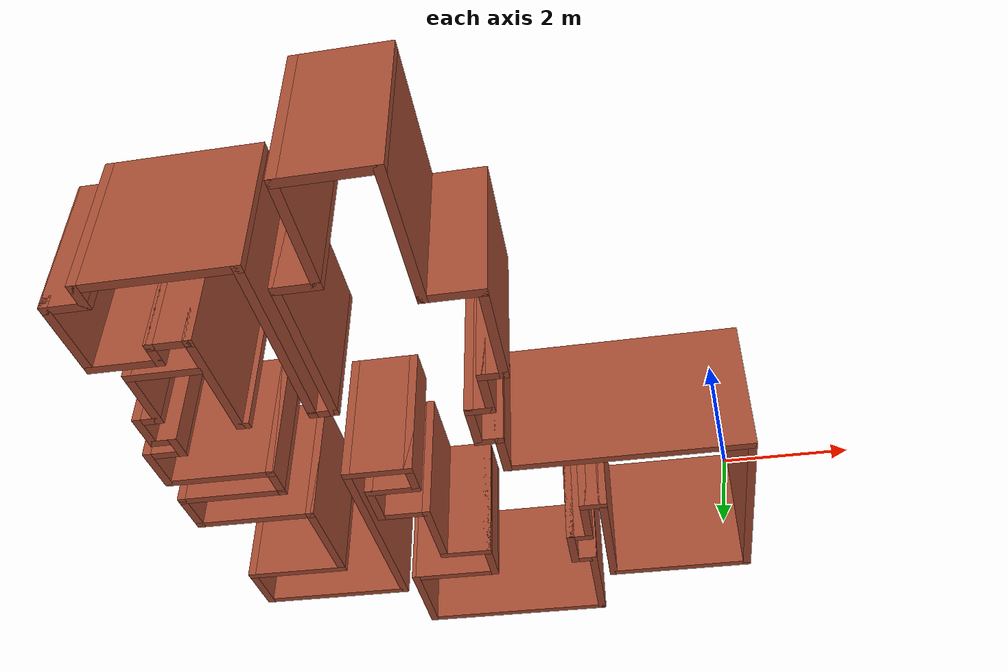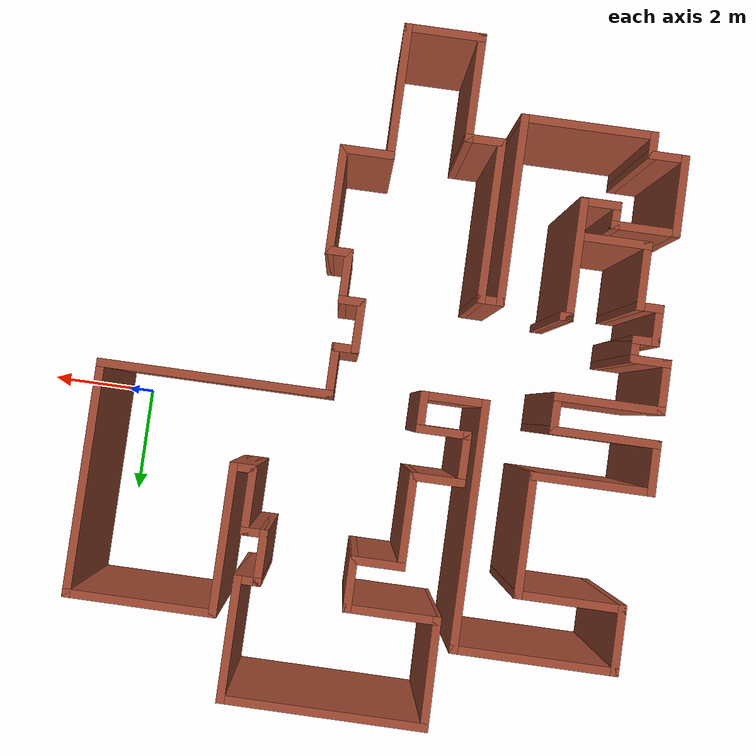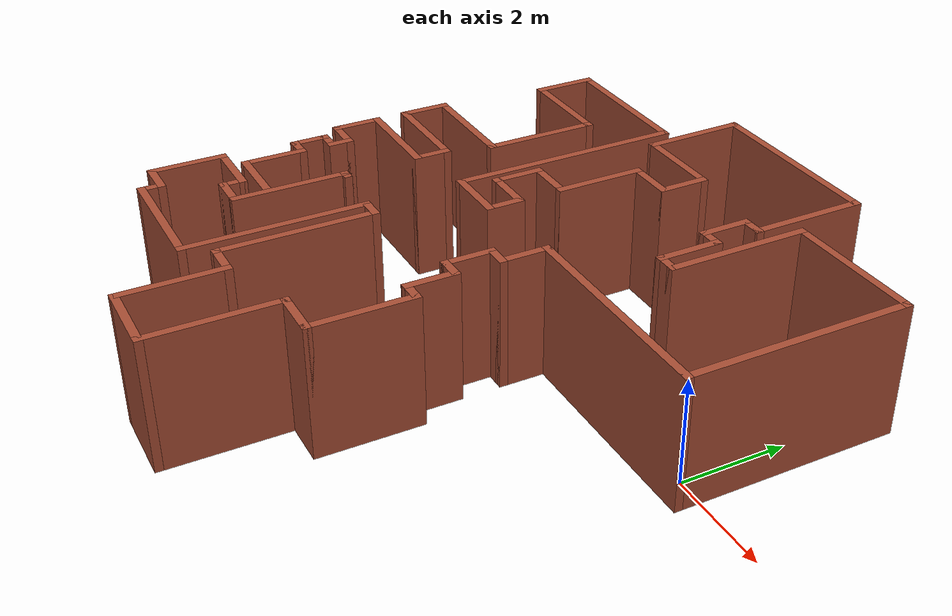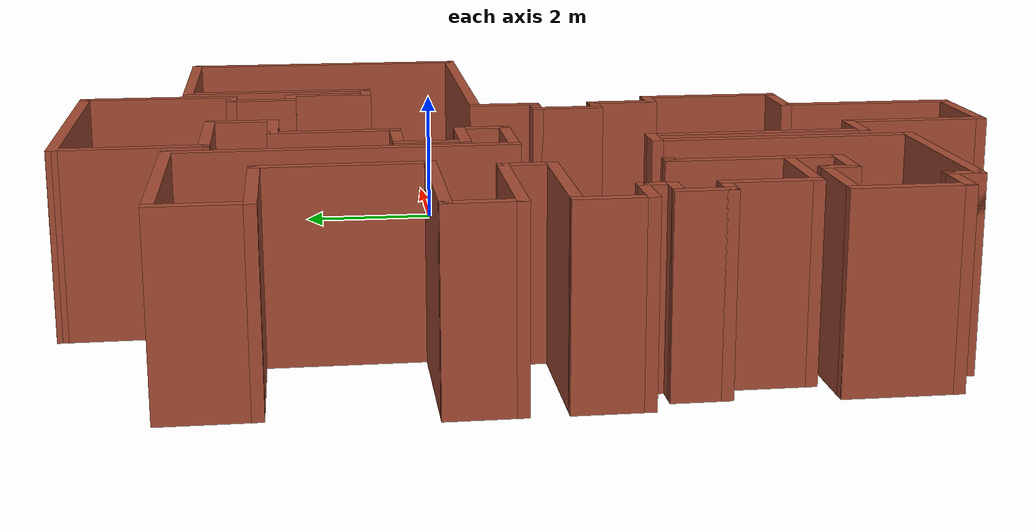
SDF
<?xml version='1.0'?>
<sdf version='1.6'>
  <model name='map_62'>
    <pose frame=''>-4.52641 -0.990707 0 0 -0 0</pose>
    <link name='Wall_0'>
      <collision name='Wall_0_Collision'>
        <geometry>
          <box>
            <size>3.75 0.15 2.5</size>
          </box>
        </geometry>
        <pose frame=''>0 0 1.25 0 -0 0</pose>
      </collision>
      <visual name='Wall_0_Visual'>
        <pose frame=''>0 0 1.25 0 -0 0</pose>
        <geometry>
          <box>
            <size>3.75 0.15 2.5</size>
          </box>
        </geometry>
        <material>
          <script>
            <uri>file://media/materials/scripts/gazebo.material</uri>
            <name>Gazebo/Bricks</name>
          </script>
          <ambient>1 1 1 1</ambient>
        </material>
        <meta>
          <layer>0</layer>
        </meta>
      </visual>
      <pose frame=''>0.239507 6.14958 0 0 -0 0</pose>
    </link>
    <link name='Wall_1'>
      <collision name='Wall_1_Collision'>
        <geometry>
          <box>
            <size>2.25 0.15 2.5</size>
          </box>
        </geometry>
        <pose frame=''>0 0 1.25 0 -0 0</pose>
      </collision>
      <visual name='Wall_1_Visual'>
        <pose frame=''>0 0 1.25 0 -0 0</pose>
        <geometry>
          <box>
            <size>2.25 0.15 2.5</size>
          </box>
        </geometry>
        <material>
          <script>
            <uri>file://media/materials/scripts/gazebo.material</uri>
            <name>Gazebo/Bricks</name>
          </script>
          <ambient>1 1 1 1</ambient>
        </material>
        <meta>
          <layer>0</layer>
        </meta>
      </visual>
      <pose frame=''>2.03951 5.09958 0 0 -0 -1.5708</pose>
    </link>
    <link name='Wall_10'>
      <collision name='Wall_10_Collision'>
        <geometry>
          <box>
            <size>4.25 0.15 2.5</size>
          </box>
        </geometry>
        <pose frame=''>0 0 1.25 0 -0 0</pose>
      </collision>
      <visual name='Wall_10_Visual'>
        <pose frame=''>0 0 1.25 0 -0 0</pose>
        <geometry>
          <box>
            <size>4.25 0.15 2.5</size>
          </box>
        </geometry>
        <material>
          <script>
            <uri>file://media/materials/scripts/gazebo.material</uri>
            <name>Gazebo/Bricks</name>
          </script>
          <ambient>1 1 1 1</ambient>
        </material>
        <meta>
          <layer>0</layer>
        </meta>
      </visual>
      <pose frame=''>2.93951 0.59958 0 0 -0 3.14159</pose>
    </link>
    <link name='Wall_11'>
      <collision name='Wall_11_Collision'>
        <geometry>
          <box>
            <size>1 0.15 2.5</size>
          </box>
        </geometry>
        <pose frame=''>0 0 1.25 0 -0 0</pose>
      </collision>
      <visual name='Wall_11_Visual'>
        <pose frame=''>0 0 1.25 0 -0 0</pose>
        <geometry>
          <box>
            <size>1 0.15 2.5</size>
          </box>
        </geometry>
        <material>
          <script>
            <uri>file://media/materials/scripts/gazebo.material</uri>
            <name>Gazebo/Bricks</name>
          </script>
          <ambient>1 1 1 1</ambient>
        </material>
        <meta>
          <layer>0</layer>
        </meta>
      </visual>
      <pose frame=''>0.889506 0.17458 0 0 -0 -1.5708</pose>
    </link>
    <link name='Wall_12'>
      <collision name='Wall_12_Collision'>
        <geometry>
          <box>
            <size>0.5 0.15 2.5</size>
          </box>
        </geometry>
        <pose frame=''>0 0 1.25 0 -0 0</pose>
      </collision>
      <visual name='Wall_12_Visual'>
        <pose frame=''>0 0 1.25 0 -0 0</pose>
        <geometry>
          <box>
            <size>0.5 0.15 2.5</size>
          </box>
        </geometry>
        <material>
          <script>
            <uri>file://media/materials/scripts/gazebo.material</uri>
            <name>Gazebo/Bricks</name>
          </script>
          <ambient>1 1 1 1</ambient>
        </material>
        <meta>
          <layer>0</layer>
        </meta>
      </visual>
      <pose frame=''>0.714507 -0.25042 0 0 -0 3.14159</pose>
    </link>
    <link name='Wall_13'>
      <collision name='Wall_13_Collision'>
        <geometry>
          <box>
            <size>1 0.15 2.5</size>
          </box>
        </geometry>
        <pose frame=''>0 0 1.25 0 -0 0</pose>
      </collision>
      <visual name='Wall_13_Visual'>
        <pose frame=''>0 0 1.25 0 -0 0</pose>
        <geometry>
          <box>
            <size>1 0.15 2.5</size>
          </box>
        </geometry>
        <material>
          <script>
            <uri>file://media/materials/scripts/gazebo.material</uri>
            <name>Gazebo/Bricks</name>
          </script>
          <ambient>1 1 1 1</ambient>
        </material>
        <meta>
          <layer>0</layer>
        </meta>
      </visual>
      <pose frame=''>0.539506 -0.67542 0 0 -0 -1.5708</pose>
    </link>
    <link name='Wall_14'>
      <collision name='Wall_14_Collision'>
        <geometry>
          <box>
            <size>0.5 0.15 2.5</size>
          </box>
        </geometry>
        <pose frame=''>0 0 1.25 0 -0 0</pose>
      </collision>
      <visual name='Wall_14_Visual'>
        <pose frame=''>0 0 1.25 0 -0 0</pose>
        <geometry>
          <box>
            <size>0.5 0.15 2.5</size>
          </box>
        </geometry>
        <material>
          <script>
            <uri>file://media/materials/scripts/gazebo.material</uri>
            <name>Gazebo/Bricks</name>
          </script>
          <ambient>1 1 1 1</ambient>
        </material>
        <meta>
          <layer>0</layer>
        </meta>
      </visual>
      <pose frame=''>0.714507 -1.10042 0 0 -0 0</pose>
    </link>
    <link name='Wall_15'>
      <collision name='Wall_15_Collision'>
        <geometry>
          <box>
            <size>1 0.15 2.5</size>
          </box>
        </geometry>
        <pose frame=''>0 0 1.25 0 -0 0</pose>
      </collision>
      <visual name='Wall_15_Visual'>
        <pose frame=''>0 0 1.25 0 -0 0</pose>
        <geometry>
          <box>
            <size>1 0.15 2.5</size>
          </box>
        </geometry>
        <material>
          <script>
            <uri>file://media/materials/scripts/gazebo.material</uri>
            <name>Gazebo/Bricks</name>
          </script>
          <ambient>1 1 1 1</ambient>
        </material>
        <meta>
          <layer>0</layer>
        </meta>
      </visual>
      <pose frame=''>0.889506 -1.52542 0 0 -0 -1.5708</pose>
    </link>
    <link name='Wall_16'>
      <collision name='Wall_16_Collision'>
        <geometry>
          <box>
            <size>0.5 0.15 2.5</size>
          </box>
        </geometry>
        <pose frame=''>0 0 1.25 0 -0 0</pose>
      </collision>
      <visual name='Wall_16_Visual'>
        <pose frame=''>0 0 1.25 0 -0 0</pose>
        <geometry>
          <box>
            <size>0.5 0.15 2.5</size>
          </box>
        </geometry>
        <material>
          <script>
            <uri>file://media/materials/scripts/gazebo.material</uri>
            <name>Gazebo/Bricks</name>
          </script>
          <ambient>1 1 1 1</ambient>
        </material>
        <meta>
          <layer>0</layer>
        </meta>
      </visual>
      <pose frame=''>1.06451 -1.95042 0 0 -0 0</pose>
    </link>
    <link name='Wall_17'>
      <collision name='Wall_17_Collision'>
        <geometry>
          <box>
            <size>2 0.15 2.5</size>
          </box>
        </geometry>
        <pose frame=''>0 0 1.25 0 -0 0</pose>
      </collision>
      <visual name='Wall_17_Visual'>
        <pose frame=''>0 0 1.25 0 -0 0</pose>
        <geometry>
          <box>
            <size>2 0.15 2.5</size>
          </box>
        </geometry>
        <material>
          <script>
            <uri>file://media/materials/scripts/gazebo.material</uri>
            <name>Gazebo/Bricks</name>
          </script>
          <ambient>1 1 1 1</ambient>
        </material>
        <meta>
          <layer>0</layer>
        </meta>
      </visual>
      <pose frame=''>1.23951 -2.87542 0 0 -0 -1.5708</pose>
    </link>
    <link name='Wall_18'>
      <collision name='Wall_18_Collision'>
        <geometry>
          <box>
            <size>1 0.15 2.5</size>
          </box>
        </geometry>
        <pose frame=''>0 0 1.25 0 -0 0</pose>
      </collision>
      <visual name='Wall_18_Visual'>
        <pose frame=''>0 0 1.25 0 -0 0</pose>
        <geometry>
          <box>
            <size>1 0.15 2.5</size>
          </box>
        </geometry>
        <material>
          <script>
            <uri>file://media/materials/scripts/gazebo.material</uri>
            <name>Gazebo/Bricks</name>
          </script>
          <ambient>1 1 1 1</ambient>
        </material>
        <meta>
          <layer>0</layer>
        </meta>
      </visual>
      <pose frame=''>0.814506 -3.80042 0 0 -0 3.14159</pose>
    </link>
    <link name='Wall_19'>
      <collision name='Wall_19_Collision'>
        <geometry>
          <box>
            <size>2.5 0.15 2.5</size>
          </box>
        </geometry>
        <pose frame=''>0 0 1.25 0 -0 0</pose>
      </collision>
      <visual name='Wall_19_Visual'>
        <pose frame=''>0 0 1.25 0 -0 0</pose>
        <geometry>
          <box>
            <size>2.5 0.15 2.5</size>
          </box>
        </geometry>
        <material>
          <script>
            <uri>file://media/materials/scripts/gazebo.material</uri>
            <name>Gazebo/Bricks</name>
          </script>
          <ambient>1 1 1 1</ambient>
        </material>
        <meta>
          <layer>0</layer>
        </meta>
      </visual>
      <pose frame=''>0.389506 -4.97542 0 0 -0 -1.5708</pose>
    </link>
    <link name='Wall_2'>
      <collision name='Wall_2_Collision'>
        <geometry>
          <box>
            <size>0.5 0.15 2.5</size>
          </box>
        </geometry>
        <pose frame=''>0 0 1.25 0 -0 0</pose>
      </collision>
      <visual name='Wall_2_Visual'>
        <pose frame=''>0 0 1.25 0 -0 0</pose>
        <geometry>
          <box>
            <size>0.5 0.15 2.5</size>
          </box>
        </geometry>
        <material>
          <script>
            <uri>file://media/materials/scripts/gazebo.material</uri>
            <name>Gazebo/Bricks</name>
          </script>
          <ambient>1 1 1 1</ambient>
        </material>
        <meta>
          <layer>0</layer>
        </meta>
      </visual>
      <pose frame=''>1.86451 4.04958 0 0 -0 3.14159</pose>
    </link>
    <link name='Wall_20'>
      <collision name='Wall_20_Collision'>
        <geometry>
          <box>
            <size>1.5 0.15 2.5</size>
          </box>
        </geometry>
        <pose frame=''>0 0 1.25 0 -0 0</pose>
      </collision>
      <visual name='Wall_20_Visual'>
        <pose frame=''>0 0 1.25 0 -0 0</pose>
        <geometry>
          <box>
            <size>1.5 0.15 2.5</size>
          </box>
        </geometry>
        <material>
          <script>
            <uri>file://media/materials/scripts/gazebo.material</uri>
            <name>Gazebo/Bricks</name>
          </script>
          <ambient>1 1 1 1</ambient>
        </material>
        <meta>
          <layer>0</layer>
        </meta>
      </visual>
      <pose frame=''>-0.285493 -6.15042 0 0 -0 3.14159</pose>
    </link>
    <link name='Wall_21'>
      <collision name='Wall_21_Collision'>
        <geometry>
          <box>
            <size>2 0.15 2.5</size>
          </box>
        </geometry>
        <pose frame=''>0 0 1.25 0 -0 0</pose>
      </collision>
      <visual name='Wall_21_Visual'>
        <pose frame=''>0 0 1.25 0 -0 0</pose>
        <geometry>
          <box>
            <size>2 0.15 2.5</size>
          </box>
        </geometry>
        <material>
          <script>
            <uri>file://media/materials/scripts/gazebo.material</uri>
            <name>Gazebo/Bricks</name>
          </script>
          <ambient>1 1 1 1</ambient>
        </material>
        <meta>
          <layer>0</layer>
        </meta>
      </visual>
      <pose frame=''>-0.960494 -5.22542 0 0 -0 1.5708</pose>
    </link>
    <link name='Wall_22'>
      <collision name='Wall_22_Collision'>
        <geometry>
          <box>
            <size>0.75 0.15 2.5</size>
          </box>
        </geometry>
        <pose frame=''>0 0 1.25 0 -0 0</pose>
      </collision>
      <visual name='Wall_22_Visual'>
        <pose frame=''>0 0 1.25 0 -0 0</pose>
        <geometry>
          <box>
            <size>0.75 0.15 2.5</size>
          </box>
        </geometry>
        <material>
          <script>
            <uri>file://media/materials/scripts/gazebo.material</uri>
            <name>Gazebo/Bricks</name>
          </script>
          <ambient>1 1 1 1</ambient>
        </material>
        <meta>
          <layer>0</layer>
        </meta>
      </visual>
      <pose frame=''>-1.26049 -4.30042 0 0 -0 3.14159</pose>
    </link>
    <link name='Wall_23'>
      <collision name='Wall_23_Collision'>
        <geometry>
          <box>
            <size>3 0.15 2.5</size>
          </box>
        </geometry>
        <pose frame=''>0 0 1.25 0 -0 0</pose>
      </collision>
      <visual name='Wall_23_Visual'>
        <pose frame=''>0 0 1.25 0 -0 0</pose>
        <geometry>
          <box>
            <size>3 0.15 2.5</size>
          </box>
        </geometry>
        <material>
          <script>
            <uri>file://media/materials/scripts/gazebo.material</uri>
            <name>Gazebo/Bricks</name>
          </script>
          <ambient>1 1 1 1</ambient>
        </material>
        <meta>
          <layer>0</layer>
        </meta>
      </visual>
      <pose frame=''>-1.56049 -2.87542 0 0 -0 1.5708</pose>
    </link>
    <link name='Wall_26'>
      <collision name='Wall_26_Collision'>
        <geometry>
          <box>
            <size>0.5 0.15 2.5</size>
          </box>
        </geometry>
        <pose frame=''>0 0 1.25 0 -0 0</pose>
      </collision>
      <visual name='Wall_26_Visual'>
        <pose frame=''>0 0 1.25 0 -0 0</pose>
        <geometry>
          <box>
            <size>0.5 0.15 2.5</size>
          </box>
        </geometry>
        <material>
          <script>
            <uri>file://media/materials/scripts/gazebo.material</uri>
            <name>Gazebo/Bricks</name>
          </script>
          <ambient>1 1 1 1</ambient>
        </material>
        <meta>
          <layer>0</layer>
        </meta>
      </visual>
      <pose frame=''>-1.73549 -1.45042 0 0 -0 3.14159</pose>
    </link>
    <link name='Wall_27'>
      <collision name='Wall_27_Collision'>
        <geometry>
          <box>
            <size>3.5 0.15 2.5</size>
          </box>
        </geometry>
        <pose frame=''>0 0 1.25 0 -0 0</pose>
      </collision>
      <visual name='Wall_27_Visual'>
        <pose frame=''>0 0 1.25 0 -0 0</pose>
        <geometry>
          <box>
            <size>3.5 0.15 2.5</size>
          </box>
        </geometry>
        <material>
          <script>
            <uri>file://media/materials/scripts/gazebo.material</uri>
            <name>Gazebo/Bricks</name>
          </script>
          <ambient>1 1 1 1</ambient>
        </material>
        <meta>
          <layer>0</layer>
        </meta>
      </visual>
      <pose frame=''>-1.91049 -3.12542 0 0 -0 -1.5708</pose>
    </link>
    <link name='Wall_28'>
      <collision name='Wall_28_Collision'>
        <geometry>
          <box>
            <size>2.5 0.15 2.5</size>
          </box>
        </geometry>
        <pose frame=''>0 0 1.25 0 -0 0</pose>
      </collision>
      <visual name='Wall_28_Visual'>
        <pose frame=''>0 0 1.25 0 -0 0</pose>
        <geometry>
          <box>
            <size>2.5 0.15 2.5</size>
          </box>
        </geometry>
        <material>
          <script>
            <uri>file://media/materials/scripts/gazebo.material</uri>
            <name>Gazebo/Bricks</name>
          </script>
          <ambient>1 1 1 1</ambient>
        </material>
        <meta>
          <layer>0</layer>
        </meta>
      </visual>
      <pose frame=''>-3.08549 -4.80042 0 0 -0 3.14159</pose>
    </link>
    <link name='Wall_29'>
      <collision name='Wall_29_Collision'>
        <geometry>
          <box>
            <size>0.5 0.15 2.5</size>
          </box>
        </geometry>
        <pose frame=''>0 0 1.25 0 -0 0</pose>
      </collision>
      <visual name='Wall_29_Visual'>
        <pose frame=''>0 0 1.25 0 -0 0</pose>
        <geometry>
          <box>
            <size>0.5 0.15 2.5</size>
          </box>
        </geometry>
        <material>
          <script>
            <uri>file://media/materials/scripts/gazebo.material</uri>
            <name>Gazebo/Bricks</name>
          </script>
          <ambient>1 1 1 1</ambient>
        </material>
        <meta>
          <layer>0</layer>
        </meta>
      </visual>
      <pose frame=''>-4.26049 -4.62542 0 0 -0 1.5708</pose>
    </link>
    <link name='Wall_3'>
      <collision name='Wall_3_Collision'>
        <geometry>
          <box>
            <size>1 0.15 2.5</size>
          </box>
        </geometry>
        <pose frame=''>0 0 1.25 0 -0 0</pose>
      </collision>
      <visual name='Wall_3_Visual'>
        <pose frame=''>0 0 1.25 0 -0 0</pose>
        <geometry>
          <box>
            <size>1 0.15 2.5</size>
          </box>
        </geometry>
        <material>
          <script>
            <uri>file://media/materials/scripts/gazebo.material</uri>
            <name>Gazebo/Bricks</name>
          </script>
          <ambient>1 1 1 1</ambient>
        </material>
        <meta>
          <layer>0</layer>
        </meta>
      </visual>
      <pose frame=''>1.68951 3.62458 0 0 -0 -1.5708</pose>
    </link>
    <link name='Wall_30'>
      <collision name='Wall_30_Collision'>
        <geometry>
          <box>
            <size>0.75 0.15 2.5</size>
          </box>
        </geometry>
        <pose frame=''>0 0 1.25 0 -0 0</pose>
      </collision>
      <visual name='Wall_30_Visual'>
        <pose frame=''>0 0 1.25 0 -0 0</pose>
        <geometry>
          <box>
            <size>0.75 0.15 2.5</size>
          </box>
        </geometry>
        <material>
          <script>
            <uri>file://media/materials/scripts/gazebo.material</uri>
            <name>Gazebo/Bricks</name>
          </script>
          <ambient>1 1 1 1</ambient>
        </material>
        <meta>
          <layer>0</layer>
        </meta>
      </visual>
      <pose frame=''>-4.56049 -4.45042 0 0 -0 3.14159</pose>
    </link>
    <link name='Wall_31'>
      <collision name='Wall_31_Collision'>
        <geometry>
          <box>
            <size>1.5 0.15 2.5</size>
          </box>
        </geometry>
        <pose frame=''>0 0 1.25 0 -0 0</pose>
      </collision>
      <visual name='Wall_31_Visual'>
        <pose frame=''>0 0 1.25 0 -0 0</pose>
        <geometry>
          <box>
            <size>1.5 0.15 2.5</size>
          </box>
        </geometry>
        <material>
          <script>
            <uri>file://media/materials/scripts/gazebo.material</uri>
            <name>Gazebo/Bricks</name>
          </script>
          <ambient>1 1 1 1</ambient>
        </material>
        <meta>
          <layer>0</layer>
        </meta>
      </visual>
      <pose frame=''>-4.86049 -3.77542 0 0 -0 1.5708</pose>
    </link>
    <link name='Wall_32'>
      <collision name='Wall_32_Collision'>
        <geometry>
          <box>
            <size>1.25 0.15 2.5</size>
          </box>
        </geometry>
        <pose frame=''>0 0 1.25 0 -0 0</pose>
      </collision>
      <visual name='Wall_32_Visual'>
        <pose frame=''>0 0 1.25 0 -0 0</pose>
        <geometry>
          <box>
            <size>1.25 0.15 2.5</size>
          </box>
        </geometry>
        <material>
          <script>
            <uri>file://media/materials/scripts/gazebo.material</uri>
            <name>Gazebo/Bricks</name>
          </script>
          <ambient>1 1 1 1</ambient>
        </material>
        <meta>
          <layer>0</layer>
        </meta>
      </visual>
      <pose frame=''>-4.31049 -3.10042 0 0 -0 0</pose>
    </link>
    <link name='Wall_33'>
      <collision name='Wall_33_Collision'>
        <geometry>
          <box>
            <size>0.5 0.15 2.5</size>
          </box>
        </geometry>
        <pose frame=''>0 0 1.25 0 -0 0</pose>
      </collision>
      <visual name='Wall_33_Visual'>
        <pose frame=''>0 0 1.25 0 -0 0</pose>
        <geometry>
          <box>
            <size>0.5 0.15 2.5</size>
          </box>
        </geometry>
        <material>
          <script>
            <uri>file://media/materials/scripts/gazebo.material</uri>
            <name>Gazebo/Bricks</name>
          </script>
          <ambient>1 1 1 1</ambient>
        </material>
        <meta>
          <layer>0</layer>
        </meta>
      </visual>
      <pose frame=''>-3.76049 -3.27542 0 0 -0 -1.5708</pose>
    </link>
    <link name='Wall_34'>
      <collision name='Wall_34_Collision'>
        <geometry>
          <box>
            <size>0.75 0.15 2.5</size>
          </box>
        </geometry>
        <pose frame=''>0 0 1.25 0 -0 0</pose>
      </collision>
      <visual name='Wall_34_Visual'>
        <pose frame=''>0 0 1.25 0 -0 0</pose>
        <geometry>
          <box>
            <size>0.75 0.15 2.5</size>
          </box>
        </geometry>
        <material>
          <script>
            <uri>file://media/materials/scripts/gazebo.material</uri>
            <name>Gazebo/Bricks</name>
          </script>
          <ambient>1 1 1 1</ambient>
        </material>
        <meta>
          <layer>0</layer>
        </meta>
      </visual>
      <pose frame=''>-3.46049 -3.45042 0 0 -0 0</pose>
    </link>
    <link name='Wall_4'>
      <collision name='Wall_4_Collision'>
        <geometry>
          <box>
            <size>0.5 0.15 2.5</size>
          </box>
        </geometry>
        <pose frame=''>0 0 1.25 0 -0 0</pose>
      </collision>
      <visual name='Wall_4_Visual'>
        <pose frame=''>0 0 1.25 0 -0 0</pose>
        <geometry>
          <box>
            <size>0.5 0.15 2.5</size>
          </box>
        </geometry>
        <material>
          <script>
            <uri>file://media/materials/scripts/gazebo.material</uri>
            <name>Gazebo/Bricks</name>
          </script>
          <ambient>1 1 1 1</ambient>
        </material>
        <meta>
          <layer>0</layer>
        </meta>
      </visual>
      <pose frame=''>1.86451 3.19958 0 0 -0 0</pose>
    </link>
    <link name='Wall_47'>
      <collision name='Wall_47_Collision'>
        <geometry>
          <box>
            <size>2.25 0.15 2.5</size>
          </box>
        </geometry>
        <pose frame=''>0 0 1.25 0 -0 0</pose>
      </collision>
      <visual name='Wall_47_Visual'>
        <pose frame=''>0 0 1.25 0 -0 0</pose>
        <geometry>
          <box>
            <size>2.25 0.15 2.5</size>
          </box>
        </geometry>
        <material>
          <script>
            <uri>file://media/materials/scripts/gazebo.material</uri>
            <name>Gazebo/Bricks</name>
          </script>
          <ambient>1 1 1 1</ambient>
        </material>
        <meta>
          <layer>0</layer>
        </meta>
      </visual>
      <pose frame=''>-3.16049 -2.40042 0 0 -0 1.5708</pose>
    </link>
    <link name='Wall_48'>
      <collision name='Wall_48_Collision'>
        <geometry>
          <box>
            <size>0.25 0.15 2.5</size>
          </box>
        </geometry>
        <pose frame=''>0 0 1.25 0 -0 0</pose>
      </collision>
      <visual name='Wall_48_Visual'>
        <pose frame=''>0 0 1.25 0 -0 0</pose>
        <geometry>
          <box>
            <size>0.25 0.15 2.5</size>
          </box>
        </geometry>
        <material>
          <script>
            <uri>file://media/materials/scripts/gazebo.material</uri>
            <name>Gazebo/Bricks</name>
          </script>
          <ambient>1 1 1 1</ambient>
        </material>
        <meta>
          <layer>0</layer>
        </meta>
      </visual>
      <pose frame=''>-3.11049 -1.35042 0 0 -0 0</pose>
    </link>
    <link name='Wall_50'>
      <collision name='Wall_50_Collision'>
        <geometry>
          <box>
            <size>1.25 0.15 2.5</size>
          </box>
        </geometry>
        <pose frame=''>0 0 1.25 0 -0 0</pose>
      </collision>
      <visual name='Wall_50_Visual'>
        <pose frame=''>0 0 1.25 0 -0 0</pose>
        <geometry>
          <box>
            <size>1.25 0.15 2.5</size>
          </box>
        </geometry>
        <material>
          <script>
            <uri>file://media/materials/scripts/gazebo.material</uri>
            <name>Gazebo/Bricks</name>
          </script>
          <ambient>1 1 1 1</ambient>
        </material>
        <meta>
          <layer>0</layer>
        </meta>
      </visual>
      <pose frame=''>-3.83951 -2.81469 0 0 -0 3.14159</pose>
    </link>
    <link name='Wall_51'>
      <collision name='Wall_51_Collision'>
        <geometry>
          <box>
            <size>1.25 0.15 2.5</size>
          </box>
        </geometry>
        <pose frame=''>0 0 1.25 0 -0 0</pose>
      </collision>
      <visual name='Wall_51_Visual'>
        <pose frame=''>0 0 1.25 0 -0 0</pose>
        <geometry>
          <box>
            <size>1.25 0.15 2.5</size>
          </box>
        </geometry>
        <material>
          <script>
            <uri>file://media/materials/scripts/gazebo.material</uri>
            <name>Gazebo/Bricks</name>
          </script>
          <ambient>1 1 1 1</ambient>
        </material>
        <meta>
          <layer>0</layer>
        </meta>
      </visual>
      <pose frame=''>-4.38951 -2.26469 0 0 -0 1.5708</pose>
    </link>
    <link name='Wall_52'>
      <collision name='Wall_52_Collision'>
        <geometry>
          <box>
            <size>0.5 0.15 2.5</size>
          </box>
        </geometry>
        <pose frame=''>0 0 1.25 0 -0 0</pose>
      </collision>
      <visual name='Wall_52_Visual'>
        <pose frame=''>0 0 1.25 0 -0 0</pose>
        <geometry>
          <box>
            <size>0.5 0.15 2.5</size>
          </box>
        </geometry>
        <material>
          <script>
            <uri>file://media/materials/scripts/gazebo.material</uri>
            <name>Gazebo/Bricks</name>
          </script>
          <ambient>1 1 1 1</ambient>
        </material>
        <meta>
          <layer>0</layer>
        </meta>
      </visual>
      <pose frame=''>-4.56451 -1.71469 0 0 -0 3.14159</pose>
    </link>
    <link name='Wall_53'>
      <collision name='Wall_53_Collision'>
        <geometry>
          <box>
            <size>0.75 0.15 2.5</size>
          </box>
        </geometry>
        <pose frame=''>0 0 1.25 0 -0 0</pose>
      </collision>
      <visual name='Wall_53_Visual'>
        <pose frame=''>0 0 1.25 0 -0 0</pose>
        <geometry>
          <box>
            <size>0.75 0.15 2.5</size>
          </box>
        </geometry>
        <material>
          <script>
            <uri>file://media/materials/scripts/gazebo.material</uri>
            <name>Gazebo/Bricks</name>
          </script>
          <ambient>1 1 1 1</ambient>
        </material>
        <meta>
          <layer>0</layer>
        </meta>
      </visual>
      <pose frame=''>-4.73951 -1.41469 0 0 -0 1.5708</pose>
    </link>
    <link name='Wall_54'>
      <collision name='Wall_54_Collision'>
        <geometry>
          <box>
            <size>0.5 0.15 2.5</size>
          </box>
        </geometry>
        <pose frame=''>0 0 1.25 0 -0 0</pose>
      </collision>
      <visual name='Wall_54_Visual'>
        <pose frame=''>0 0 1.25 0 -0 0</pose>
        <geometry>
          <box>
            <size>0.5 0.15 2.5</size>
          </box>
        </geometry>
        <material>
          <script>
            <uri>file://media/materials/scripts/gazebo.material</uri>
            <name>Gazebo/Bricks</name>
          </script>
          <ambient>1 1 1 1</ambient>
        </material>
        <meta>
          <layer>0</layer>
        </meta>
      </visual>
      <pose frame=''>-4.56451 -1.11469 0 0 -0 0</pose>
    </link>
    <link name='Wall_55'>
      <collision name='Wall_55_Collision'>
        <geometry>
          <box>
            <size>0.5 0.15 2.5</size>
          </box>
        </geometry>
        <pose frame=''>0 0 1.25 0 -0 0</pose>
      </collision>
      <visual name='Wall_55_Visual'>
        <pose frame=''>0 0 1.25 0 -0 0</pose>
        <geometry>
          <box>
            <size>0.5 0.15 2.5</size>
          </box>
        </geometry>
        <material>
          <script>
            <uri>file://media/materials/scripts/gazebo.material</uri>
            <name>Gazebo/Bricks</name>
          </script>
          <ambient>1 1 1 1</ambient>
        </material>
        <meta>
          <layer>0</layer>
        </meta>
      </visual>
      <pose frame=''>-4.38951 -0.939687 0 0 -0 1.5708</pose>
    </link>
    <link name='Wall_56'>
      <collision name='Wall_56_Collision'>
        <geometry>
          <box>
            <size>0.75 0.15 2.5</size>
          </box>
        </geometry>
        <pose frame=''>0 0 1.25 0 -0 0</pose>
      </collision>
      <visual name='Wall_56_Visual'>
        <pose frame=''>0 0 1.25 0 -0 0</pose>
        <geometry>
          <box>
            <size>0.75 0.15 2.5</size>
          </box>
        </geometry>
        <material>
          <script>
            <uri>file://media/materials/scripts/gazebo.material</uri>
            <name>Gazebo/Bricks</name>
          </script>
          <ambient>1 1 1 1</ambient>
        </material>
        <meta>
          <layer>0</layer>
        </meta>
      </visual>
      <pose frame=''>-4.68951 -0.764687 0 0 -0 3.14159</pose>
    </link>
    <link name='Wall_57'>
      <collision name='Wall_57_Collision'>
        <geometry>
          <box>
            <size>1 0.15 2.5</size>
          </box>
        </geometry>
        <pose frame=''>0 0 1.25 0 -0 0</pose>
      </collision>
      <visual name='Wall_57_Visual'>
        <pose frame=''>0 0 1.25 0 -0 0</pose>
        <geometry>
          <box>
            <size>1 0.15 2.5</size>
          </box>
        </geometry>
        <material>
          <script>
            <uri>file://media/materials/scripts/gazebo.material</uri>
            <name>Gazebo/Bricks</name>
          </script>
          <ambient>1 1 1 1</ambient>
        </material>
        <meta>
          <layer>0</layer>
        </meta>
      </visual>
      <pose frame=''>-4.98951 -0.339687 0 0 -0 1.5708</pose>
    </link>
    <link name='Wall_58'>
      <collision name='Wall_58_Collision'>
        <geometry>
          <box>
            <size>2 0.15 2.5</size>
          </box>
        </geometry>
        <pose frame=''>0 0 1.25 0 -0 0</pose>
      </collision>
      <visual name='Wall_58_Visual'>
        <pose frame=''>0 0 1.25 0 -0 0</pose>
        <geometry>
          <box>
            <size>2 0.15 2.5</size>
          </box>
        </geometry>
        <material>
          <script>
            <uri>file://media/materials/scripts/gazebo.material</uri>
            <name>Gazebo/Bricks</name>
          </script>
          <ambient>1 1 1 1</ambient>
        </material>
        <meta>
          <layer>0</layer>
        </meta>
      </visual>
      <pose frame=''>-4.06451 0.085313 0 0 -0 0</pose>
    </link>
    <link name='Wall_59'>
      <collision name='Wall_59_Collision'>
        <geometry>
          <box>
            <size>0.75 0.15 2.5</size>
          </box>
        </geometry>
        <pose frame=''>0 0 1.25 0 -0 0</pose>
      </collision>
      <visual name='Wall_59_Visual'>
        <pose frame=''>0 0 1.25 0 -0 0</pose>
        <geometry>
          <box>
            <size>0.75 0.15 2.5</size>
          </box>
        </geometry>
        <material>
          <script>
            <uri>file://media/materials/scripts/gazebo.material</uri>
            <name>Gazebo/Bricks</name>
          </script>
          <ambient>1 1 1 1</ambient>
        </material>
        <meta>
          <layer>0</layer>
        </meta>
      </visual>
      <pose frame=''>-3.13951 0.385313 0 0 -0 1.5708</pose>
    </link>
    <link name='Wall_60'>
      <collision name='Wall_60_Collision'>
        <geometry>
          <box>
            <size>2 0.15 2.5</size>
          </box>
        </geometry>
        <pose frame=''>0 0 1.25 0 -0 0</pose>
      </collision>
      <visual name='Wall_60_Visual'>
        <pose frame=''>0 0 1.25 0 -0 0</pose>
        <geometry>
          <box>
            <size>2 0.15 2.5</size>
          </box>
        </geometry>
        <material>
          <script>
            <uri>file://media/materials/scripts/gazebo.material</uri>
            <name>Gazebo/Bricks</name>
          </script>
          <ambient>1 1 1 1</ambient>
        </material>
        <meta>
          <layer>0</layer>
        </meta>
      </visual>
      <pose frame=''>-4.06451 0.685313 0 0 -0 3.14159</pose>
    </link>
    <link name='Wall_61'>
      <collision name='Wall_61_Collision'>
        <geometry>
          <box>
            <size>1 0.15 2.5</size>
          </box>
        </geometry>
        <pose frame=''>0 0 1.25 0 -0 0</pose>
      </collision>
      <visual name='Wall_61_Visual'>
        <pose frame=''>0 0 1.25 0 -0 0</pose>
        <geometry>
          <box>
            <size>1 0.15 2.5</size>
          </box>
        </geometry>
        <material>
          <script>
            <uri>file://media/materials/scripts/gazebo.material</uri>
            <name>Gazebo/Bricks</name>
          </script>
          <ambient>1 1 1 1</ambient>
        </material>
        <meta>
          <layer>0</layer>
        </meta>
      </visual>
      <pose frame=''>-4.98951 1.11031 0 0 -0 1.5708</pose>
    </link>
    <link name='Wall_62'>
      <collision name='Wall_62_Collision'>
        <geometry>
          <box>
            <size>2.25 0.15 2.5</size>
          </box>
        </geometry>
        <pose frame=''>0 0 1.25 0 -0 0</pose>
      </collision>
      <visual name='Wall_62_Visual'>
        <pose frame=''>0 0 1.25 0 -0 0</pose>
        <geometry>
          <box>
            <size>2.25 0.15 2.5</size>
          </box>
        </geometry>
        <material>
          <script>
            <uri>file://media/materials/scripts/gazebo.material</uri>
            <name>Gazebo/Bricks</name>
          </script>
          <ambient>1 1 1 1</ambient>
        </material>
        <meta>
          <layer>0</layer>
        </meta>
      </visual>
      <pose frame=''>-3.93951 1.53531 0 0 -0 0</pose>
    </link>
    <link name='Wall_63'>
      <collision name='Wall_63_Collision'>
        <geometry>
          <box>
            <size>2.25 0.15 2.5</size>
          </box>
        </geometry>
        <pose frame=''>0 0 1.25 0 -0 0</pose>
      </collision>
      <visual name='Wall_63_Visual'>
        <pose frame=''>0 0 1.25 0 -0 0</pose>
        <geometry>
          <box>
            <size>2.25 0.15 2.5</size>
          </box>
        </geometry>
        <material>
          <script>
            <uri>file://media/materials/scripts/gazebo.material</uri>
            <name>Gazebo/Bricks</name>
          </script>
          <ambient>1 1 1 1</ambient>
        </material>
        <meta>
          <layer>0</layer>
        </meta>
      </visual>
      <pose frame=''>-2.88951 2.58531 0 0 -0 1.5708</pose>
    </link>
    <link name='Wall_64'>
      <collision name='Wall_64_Collision'>
        <geometry>
          <box>
            <size>2 0.15 2.5</size>
          </box>
        </geometry>
        <pose frame=''>0 0 1.25 0 -0 0</pose>
      </collision>
      <visual name='Wall_64_Visual'>
        <pose frame=''>0 0 1.25 0 -0 0</pose>
        <geometry>
          <box>
            <size>2 0.15 2.5</size>
          </box>
        </geometry>
        <material>
          <script>
            <uri>file://media/materials/scripts/gazebo.material</uri>
            <name>Gazebo/Bricks</name>
          </script>
          <ambient>1 1 1 1</ambient>
        </material>
        <meta>
          <layer>0</layer>
        </meta>
      </visual>
      <pose frame=''>-3.81451 3.63531 0 0 -0 3.14159</pose>
    </link>
    <link name='Wall_65'>
      <collision name='Wall_65_Collision'>
        <geometry>
          <box>
            <size>1.25 0.15 2.5</size>
          </box>
        </geometry>
        <pose frame=''>0 0 1.25 0 -0 0</pose>
      </collision>
      <visual name='Wall_65_Visual'>
        <pose frame=''>0 0 1.25 0 -0 0</pose>
        <geometry>
          <box>
            <size>1.25 0.15 2.5</size>
          </box>
        </geometry>
        <material>
          <script>
            <uri>file://media/materials/scripts/gazebo.material</uri>
            <name>Gazebo/Bricks</name>
          </script>
          <ambient>1 1 1 1</ambient>
        </material>
        <meta>
          <layer>0</layer>
        </meta>
      </visual>
      <pose frame=''>-4.73951 4.18531 0 0 -0 1.5708</pose>
    </link>
    <link name='Wall_66'>
      <collision name='Wall_66_Collision'>
        <geometry>
          <box>
            <size>3 0.15 2.5</size>
          </box>
        </geometry>
        <pose frame=''>0 0 1.25 0 -0 0</pose>
      </collision>
      <visual name='Wall_66_Visual'>
        <pose frame=''>0 0 1.25 0 -0 0</pose>
        <geometry>
          <box>
            <size>3 0.15 2.5</size>
          </box>
        </geometry>
        <material>
          <script>
            <uri>file://media/materials/scripts/gazebo.material</uri>
            <name>Gazebo/Bricks</name>
          </script>
          <ambient>1 1 1 1</ambient>
        </material>
        <meta>
          <layer>0</layer>
        </meta>
      </visual>
      <pose frame=''>-3.31451 4.73531 0 0 -0 0</pose>
    </link>
    <link name='Wall_67'>
      <collision name='Wall_67_Collision'>
        <geometry>
          <box>
            <size>4.5 0.15 2.5</size>
          </box>
        </geometry>
        <pose frame=''>0 0 1.25 0 -0 0</pose>
      </collision>
      <visual name='Wall_67_Visual'>
        <pose frame=''>0 0 1.25 0 -0 0</pose>
        <geometry>
          <box>
            <size>4.5 0.15 2.5</size>
          </box>
        </geometry>
        <material>
          <script>
            <uri>file://media/materials/scripts/gazebo.material</uri>
            <name>Gazebo/Bricks</name>
          </script>
          <ambient>1 1 1 1</ambient>
        </material>
        <meta>
          <layer>0</layer>
        </meta>
      </visual>
      <pose frame=''>-1.88951 2.56031 0 0 -0 -1.5708</pose>
    </link>
    <link name='Wall_68'>
      <collision name='Wall_68_Collision'>
        <geometry>
          <box>
            <size>1.25 0.15 2.5</size>
          </box>
        </geometry>
        <pose frame=''>0 0 1.25 0 -0 0</pose>
      </collision>
      <visual name='Wall_68_Visual'>
        <pose frame=''>0 0 1.25 0 -0 0</pose>
        <geometry>
          <box>
            <size>1.25 0.15 2.5</size>
          </box>
        </geometry>
        <material>
          <script>
            <uri>file://media/materials/scripts/gazebo.material</uri>
            <name>Gazebo/Bricks</name>
          </script>
          <ambient>1 1 1 1</ambient>
        </material>
        <meta>
          <layer>0</layer>
        </meta>
      </visual>
      <pose frame=''>-1.33951 0.385313 0 0 -0 0</pose>
    </link>
    <link name='Wall_69'>
      <collision name='Wall_69_Collision'>
        <geometry>
          <box>
            <size>0.75 0.15 2.5</size>
          </box>
        </geometry>
        <pose frame=''>0 0 1.25 0 -0 0</pose>
      </collision>
      <visual name='Wall_69_Visual'>
        <pose frame=''>0 0 1.25 0 -0 0</pose>
        <geometry>
          <box>
            <size>0.75 0.15 2.5</size>
          </box>
        </geometry>
        <material>
          <script>
            <uri>file://media/materials/scripts/gazebo.material</uri>
            <name>Gazebo/Bricks</name>
          </script>
          <ambient>1 1 1 1</ambient>
        </material>
        <meta>
          <layer>0</layer>
        </meta>
      </visual>
      <pose frame=''>-0.789507 0.685313 0 0 -0 1.5708</pose>
    </link>
    <link name='Wall_70'>
      <collision name='Wall_70_Collision'>
        <geometry>
          <box>
            <size>1 0.15 2.5</size>
          </box>
        </geometry>
        <pose frame=''>0 0 1.25 0 -0 0</pose>
      </collision>
      <visual name='Wall_70_Visual'>
        <pose frame=''>0 0 1.25 0 -0 0</pose>
        <geometry>
          <box>
            <size>1 0.15 2.5</size>
          </box>
        </geometry>
        <material>
          <script>
            <uri>file://media/materials/scripts/gazebo.material</uri>
            <name>Gazebo/Bricks</name>
          </script>
          <ambient>1 1 1 1</ambient>
        </material>
        <meta>
          <layer>0</layer>
        </meta>
      </visual>
      <pose frame=''>-1.21451 0.985313 0 0 -0 3.14159</pose>
    </link>
    <link name='Wall_71'>
      <collision name='Wall_71_Collision'>
        <geometry>
          <box>
            <size>1 0.15 2.5</size>
          </box>
        </geometry>
        <pose frame=''>0 0 1.25 0 -0 0</pose>
      </collision>
      <visual name='Wall_71_Visual'>
        <pose frame=''>0 0 1.25 0 -0 0</pose>
        <geometry>
          <box>
            <size>1 0.15 2.5</size>
          </box>
        </geometry>
        <material>
          <script>
            <uri>file://media/materials/scripts/gazebo.material</uri>
            <name>Gazebo/Bricks</name>
          </script>
          <ambient>1 1 1 1</ambient>
        </material>
        <meta>
          <layer>0</layer>
        </meta>
      </visual>
      <pose frame=''>-1.63951 1.41031 0 0 -0 1.5708</pose>
    </link>
    <link name='Wall_72'>
      <collision name='Wall_72_Collision'>
        <geometry>
          <box>
            <size>1 0.15 2.5</size>
          </box>
        </geometry>
        <pose frame=''>0 0 1.25 0 -0 0</pose>
      </collision>
      <visual name='Wall_72_Visual'>
        <pose frame=''>0 0 1.25 0 -0 0</pose>
        <geometry>
          <box>
            <size>1 0.15 2.5</size>
          </box>
        </geometry>
        <material>
          <script>
            <uri>file://media/materials/scripts/gazebo.material</uri>
            <name>Gazebo/Bricks</name>
          </script>
          <ambient>1 1 1 1</ambient>
        </material>
        <meta>
          <layer>0</layer>
        </meta>
      </visual>
      <pose frame=''>-1.21451 1.83531 0 0 -0 0</pose>
    </link>
    <link name='Wall_73'>
      <collision name='Wall_73_Collision'>
        <geometry>
          <box>
            <size>1.75 0.15 2.5</size>
          </box>
        </geometry>
        <pose frame=''>0 0 1.25 0 -0 0</pose>
      </collision>
      <visual name='Wall_73_Visual'>
        <pose frame=''>0 0 1.25 0 -0 0</pose>
        <geometry>
          <box>
            <size>1.75 0.15 2.5</size>
          </box>
        </geometry>
        <material>
          <script>
            <uri>file://media/materials/scripts/gazebo.material</uri>
            <name>Gazebo/Bricks</name>
          </script>
          <ambient>1 1 1 1</ambient>
        </material>
        <meta>
          <layer>0</layer>
        </meta>
      </visual>
      <pose frame=''>-0.789507 2.63531 0 0 -0 1.5708</pose>
    </link>
    <link name='Wall_74'>
      <collision name='Wall_74_Collision'>
        <geometry>
          <box>
            <size>1 0.15 2.5</size>
          </box>
        </geometry>
        <pose frame=''>0 0 1.25 0 -0 0</pose>
      </collision>
      <visual name='Wall_74_Visual'>
        <pose frame=''>0 0 1.25 0 -0 0</pose>
        <geometry>
          <box>
            <size>1 0.15 2.5</size>
          </box>
        </geometry>
        <material>
          <script>
            <uri>file://media/materials/scripts/gazebo.material</uri>
            <name>Gazebo/Bricks</name>
          </script>
          <ambient>1 1 1 1</ambient>
        </material>
        <meta>
          <layer>0</layer>
        </meta>
      </visual>
      <pose frame=''>-0.364506 3.43531 0 0 -0 0</pose>
    </link>
    <link name='Wall_75'>
      <collision name='Wall_75_Collision'>
        <geometry>
          <box>
            <size>1 0.15 2.5</size>
          </box>
        </geometry>
        <pose frame=''>0 0 1.25 0 -0 0</pose>
      </collision>
      <visual name='Wall_75_Visual'>
        <pose frame=''>0 0 1.25 0 -0 0</pose>
        <geometry>
          <box>
            <size>1 0.15 2.5</size>
          </box>
        </geometry>
        <material>
          <script>
            <uri>file://media/materials/scripts/gazebo.material</uri>
            <name>Gazebo/Bricks</name>
          </script>
          <ambient>1 1 1 1</ambient>
        </material>
        <meta>
          <layer>0</layer>
        </meta>
      </visual>
      <pose frame=''>0.060493 3.86031 0 0 -0 1.5708</pose>
    </link>
    <link name='Wall_76'>
      <collision name='Wall_76_Collision'>
        <geometry>
          <box>
            <size>1.75 0.15 2.5</size>
          </box>
        </geometry>
        <pose frame=''>0 0 1.25 0 -0 0</pose>
      </collision>
      <visual name='Wall_76_Visual'>
        <pose frame=''>0 0 1.25 0 -0 0</pose>
        <geometry>
          <box>
            <size>1.75 0.15 2.5</size>
          </box>
        </geometry>
        <material>
          <script>
            <uri>file://media/materials/scripts/gazebo.material</uri>
            <name>Gazebo/Bricks</name>
          </script>
          <ambient>1 1 1 1</ambient>
        </material>
        <meta>
          <layer>0</layer>
        </meta>
      </visual>
      <pose frame=''>-0.739506 4.28531 0 0 -0 3.14159</pose>
    </link>
    <link name='Wall_77'>
      <collision name='Wall_77_Collision'>
        <geometry>
          <box>
            <size>2.01438 0.15 2.5</size>
          </box>
        </geometry>
        <pose frame=''>0 0 1.25 0 -0 0</pose>
      </collision>
      <visual name='Wall_77_Visual'>
        <pose frame=''>0 0 1.25 0 -0 0</pose>
        <geometry>
          <box>
            <size>2.01438 0.15 2.5</size>
          </box>
        </geometry>
        <material>
          <script>
            <uri>file://media/materials/scripts/gazebo.material</uri>
            <name>Gazebo/Bricks</name>
          </script>
          <ambient>1 1 1 1</ambient>
        </material>
        <meta>
          <layer>0</layer>
        </meta>
      </visual>
      <pose frame=''>-1.55 5.21745 0 0 -0 1.58205</pose>
    </link>
    <link name='Wall_79'>
      <collision name='Wall_79_Collision'>
        <geometry>
          <box>
            <size>1.25 0.15 2.5</size>
          </box>
        </geometry>
        <pose frame=''>0 0 1.25 0 -0 0</pose>
      </collision>
      <visual name='Wall_79_Visual'>
        <pose frame=''>0 0 1.25 0 -0 0</pose>
        <geometry>
          <box>
            <size>1.25 0.15 2.5</size>
          </box>
        </geometry>
        <material>
          <script>
            <uri>file://media/materials/scripts/gazebo.material</uri>
            <name>Gazebo/Bricks</name>
          </script>
          <ambient>1 1 1 1</ambient>
        </material>
        <meta>
          <layer>0</layer>
        </meta>
      </visual>
      <pose frame=''>2.03951 2.64958 0 0 -0 -1.5708</pose>
    </link>
    <link name='Wall_8'>
      <collision name='Wall_8_Collision'>
        <geometry>
          <box>
            <size>2.75 0.15 2.5</size>
          </box>
        </geometry>
        <pose frame=''>0 0 1.25 0 -0 0</pose>
      </collision>
      <visual name='Wall_8_Visual'>
        <pose frame=''>0 0 1.25 0 -0 0</pose>
        <geometry>
          <box>
            <size>2.75 0.15 2.5</size>
          </box>
        </geometry>
        <material>
          <script>
            <uri>file://media/materials/scripts/gazebo.material</uri>
            <name>Gazebo/Bricks</name>
          </script>
          <ambient>1 1 1 1</ambient>
        </material>
        <meta>
          <layer>0</layer>
        </meta>
      </visual>
      <pose frame=''>3.68951 4.69958 0 0 -0 0</pose>
    </link>
    <link name='Wall_80'>
      <collision name='Wall_80_Collision'>
        <geometry>
          <box>
            <size>0.5 0.15 2.5</size>
          </box>
        </geometry>
        <pose frame=''>0 0 1.25 0 -0 0</pose>
      </collision>
      <visual name='Wall_80_Visual'>
        <pose frame=''>0 0 1.25 0 -0 0</pose>
        <geometry>
          <box>
            <size>0.5 0.15 2.5</size>
          </box>
        </geometry>
        <material>
          <script>
            <uri>file://media/materials/scripts/gazebo.material</uri>
            <name>Gazebo/Bricks</name>
          </script>
          <ambient>1 1 1 1</ambient>
        </material>
        <meta>
          <layer>0</layer>
        </meta>
      </visual>
      <pose frame=''>2.21451 2.09958 0 0 -0 0</pose>
    </link>
    <link name='Wall_81'>
      <collision name='Wall_81_Collision'>
        <geometry>
          <box>
            <size>2.75 0.15 2.5</size>
          </box>
        </geometry>
        <pose frame=''>0 0 1.25 0 -0 0</pose>
      </collision>
      <visual name='Wall_81_Visual'>
        <pose frame=''>0 0 1.25 0 -0 0</pose>
        <geometry>
          <box>
            <size>2.75 0.15 2.5</size>
          </box>
        </geometry>
        <material>
          <script>
            <uri>file://media/materials/scripts/gazebo.material</uri>
            <name>Gazebo/Bricks</name>
          </script>
          <ambient>1 1 1 1</ambient>
        </material>
        <meta>
          <layer>0</layer>
        </meta>
      </visual>
      <pose frame=''>2.38951 3.39958 0 0 -0 1.5708</pose>
    </link>
    <link name='Wall_9'>
      <collision name='Wall_9_Collision'>
        <geometry>
          <box>
            <size>4.25 0.15 2.5</size>
          </box>
        </geometry>
        <pose frame=''>0 0 1.25 0 -0 0</pose>
      </collision>
      <visual name='Wall_9_Visual'>
        <pose frame=''>0 0 1.25 0 -0 0</pose>
        <geometry>
          <box>
            <size>4.25 0.15 2.5</size>
          </box>
        </geometry>
        <material>
          <script>
            <uri>file://media/materials/scripts/gazebo.material</uri>
            <name>Gazebo/Bricks</name>
          </script>
          <ambient>1 1 1 1</ambient>
        </material>
        <meta>
          <layer>0</layer>
        </meta>
      </visual>
      <pose frame=''>4.98951 2.64958 0 0 -0 -1.5708</pose>
    </link>
    <static>1</static>
  </model>
</sdf>
